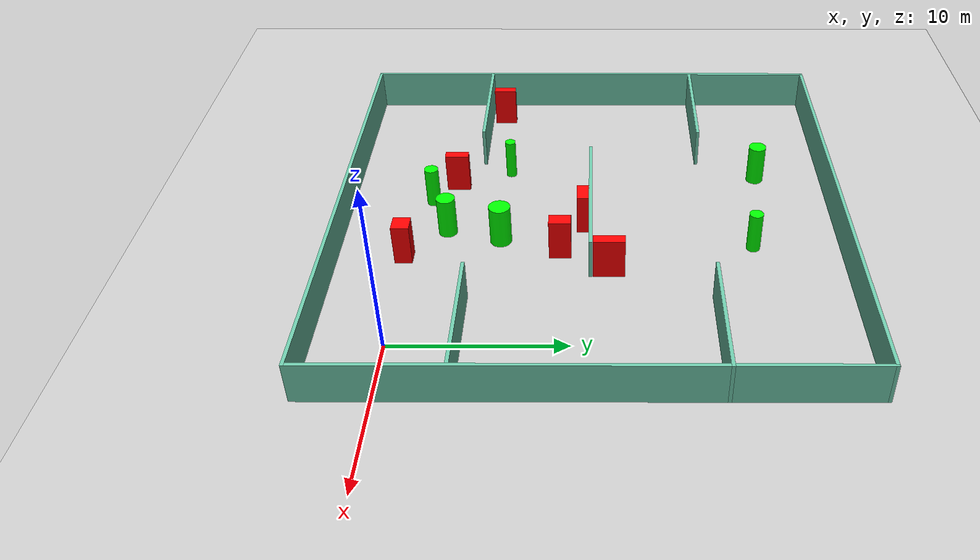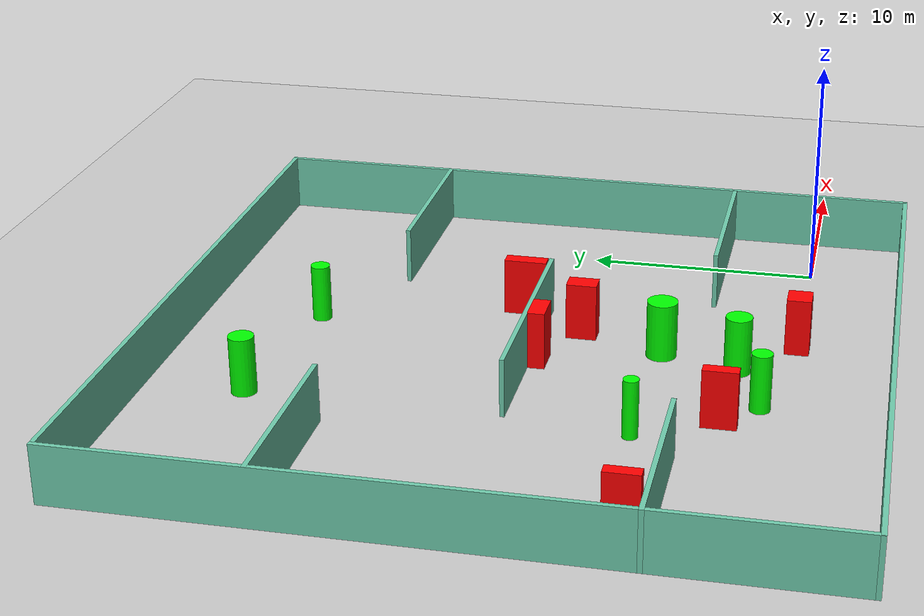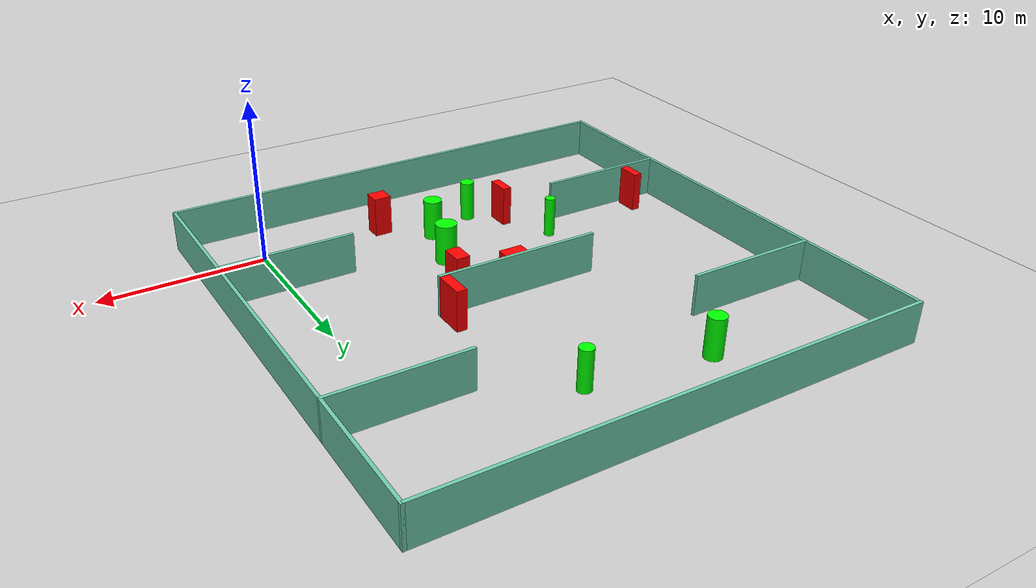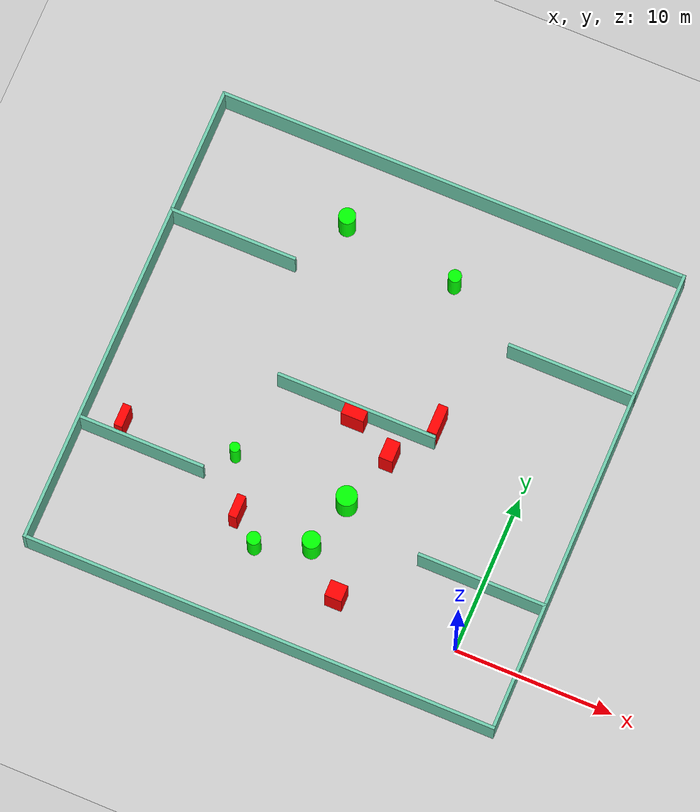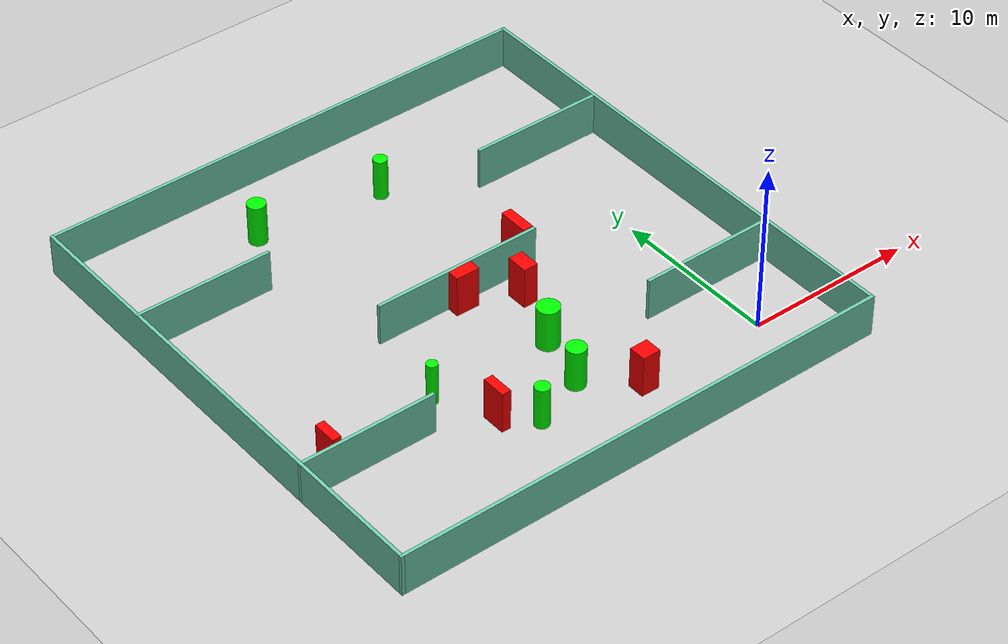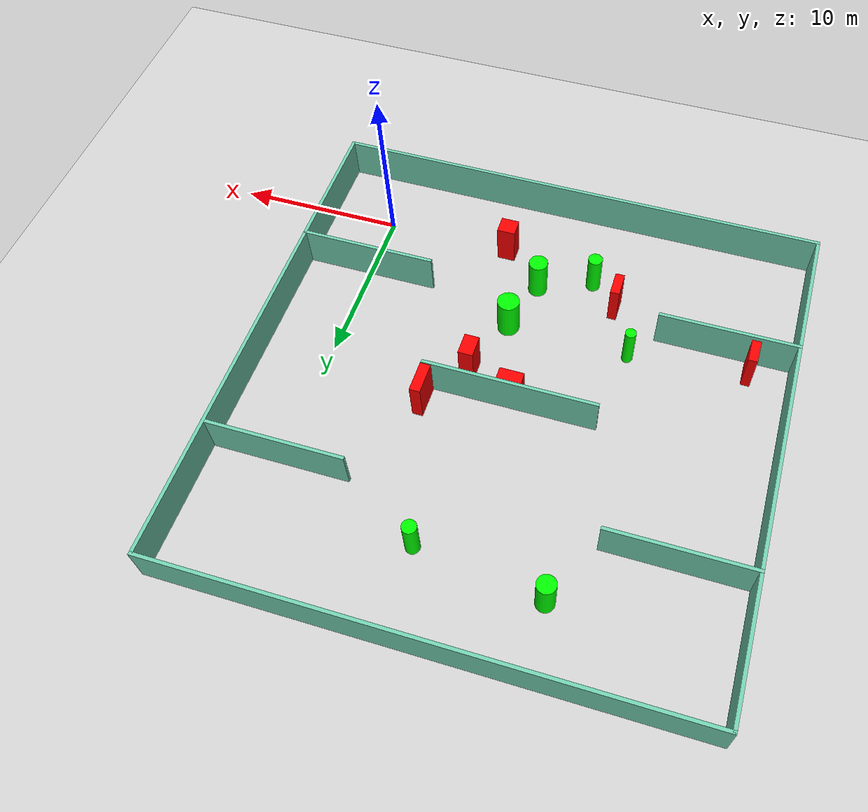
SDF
<sdf version="1.7">
 <world name="default">
  <light name="sun" type="directional">
   <pose>0 0 10 0 -0 0</pose>
   <diffuse>0.8 0.8 0.8 1</diffuse>
   <specular>0.2 0.2 0.2 1</specular>
   <attenuation>
    <range>1000</range>
    <constant>0.9</constant>
    <linear>0.01</linear>
    <quadratic>0.001</quadratic>
   </attenuation>
   <direction>-0.5 0.1 -0.9</direction>
   <spot><inner_angle>0</inner_angle><outer_angle>0</outer_angle><falloff>0</falloff></spot>
  </light>
  <model name="ground_plane">
   <static>1</static>
   <link name="link">
    <collision name="collision">
     <geometry><plane><normal>0 0 1</normal><size>100 100</size></plane></geometry>
     <surface>
      <contact><collide_bitmask>65535</collide_bitmask></contact>
      <friction><ode><mu>100</mu><mu2>50</mu2></ode></friction>
     </surface>
    </collision>
    <visual name="visual">
     <cast_shadows>0</cast_shadows>
     <geometry><plane><normal>0 0 1</normal><size>100 100</size></plane></geometry>
     <material>
      <script><uri>file://media/materials/scripts/gazebo.material</uri><name>Gazebo/Grey</name></script>
     </material>
    </visual>
   </link>
  </model>
  <gravity>0 0 -9.8</gravity>
  <magnetic_field>6e-06 2.3e-05 -4.2e-05</magnetic_field>
  <atmosphere type="adiabatic"/>
  <physics type="ode">
   <max_step_size>0.001</max_step_size>
   <real_time_factor>1</real_time_factor>
   <real_time_update_rate>1000</real_time_update_rate>
  </physics>
  <scene><ambient>0.4 0.4 0.4 1</ambient><background>0.7 0.7 0.7 1</background><shadows>1</shadows></scene>
  <spherical_coordinates>
   <surface_model>EARTH_WGS84</surface_model>
   <latitude_deg>0</latitude_deg>
   <longitude_deg>0</longitude_deg>
   <elevation>0</elevation>
   <heading_deg>0</heading_deg>
  </spherical_coordinates>
  <model name="my_base_walls">
   <link name="Wall_10">
    <collision name="Wall_10_Collision">
     <geometry><box><size>8.2 0.2 2.5</size></box></geometry>
     <pose>0 0 1.25 0 -0 0</pose>
    </collision>
    <visual name="Wall_10_Visual">
     <pose>0 0 1.25 0 -0 0</pose>
     <geometry><box><size>8.2 0.2 2.5</size></box></geometry>
     <material>
      <script><uri>file://media/materials/scripts/gazebo.material</uri><name>Gazebo/Grey</name></script>
      <ambient>0.435294 0.796078 0.67451 1</ambient>
     </material>
     <meta><layer>0</layer></meta>
    </visual>
    <pose>-11 -7 0 0 -0 0</pose>
   </link>
   <link name="Wall_12">
    <collision name="Wall_12_Collision">
     <geometry><box><size>8.2 0.2 2.5</size></box></geometry>
     <pose>0 0 1.25 0 -0 0</pose>
    </collision>
    <visual name="Wall_12_Visual">
     <pose>0 0 1.25 0 -0 0</pose>
     <geometry><box><size>8.2 0.2 2.5</size></box></geometry>
     <material>
      <script><uri>file://media/materials/scripts/gazebo.material</uri><name>Gazebo/Grey</name></script>
      <ambient>0.435294 0.796078 0.67451 1</ambient>
     </material>
     <meta><layer>0</layer></meta>
    </visual>
    <pose>-11 7 0 0 -0 0</pose>
   </link>
   <link name="Wall_14">
    <collision name="Wall_14_Collision">
     <geometry><box><size>8.2 0.2 2.5</size></box></geometry>
     <pose>0 0 1.25 0 -0 0</pose>
    </collision>
    <visual name="Wall_14_Visual">
     <pose>0 0 1.25 0 -0 0</pose>
     <geometry><box><size>8.2 0.2 2.5</size></box></geometry>
     <material>
      <script><uri>file://media/materials/scripts/gazebo.material</uri><name>Gazebo/Grey</name></script>
      <ambient>0.435294 0.796078 0.67451 1</ambient>
     </material>
     <meta><layer>0</layer></meta>
    </visual>
    <pose>11 7 0 0 -0 3.14159</pose>
   </link>
   <link name="Wall_16">
    <collision name="Wall_16_Collision">
     <geometry><box><size>10.2 0.2 2.5</size></box></geometry>
     <pose>0 0 1.25 0 -0 0</pose>
    </collision>
    <visual name="Wall_16_Visual">
     <pose>0 0 1.25 0 -0 0</pose>
     <geometry><box><size>10.2 0.2 2.5</size></box></geometry>
     <material>
      <script><uri>file://media/materials/scripts/gazebo.material</uri><name>Gazebo/Grey</name></script>
      <ambient>0.435294 0.796078 0.67451 1</ambient>
     </material>
     <meta><layer>0</layer></meta>
    </visual>
    <pose>0 0 0 0 -0 3.14159</pose>
   </link>
   <link name="Wall_2">
    <collision name="Wall_2_Collision">
     <geometry><box><size>30.2 0.2 2.5</size></box></geometry>
     <pose>0 0 1.25 0 -0 0</pose>
    </collision>
    <visual name="Wall_2_Visual">
     <pose>0 0 1.25 0 -0 0</pose>
     <geometry><box><size>30.2 0.2 2.5</size></box></geometry>
     <material>
      <script><uri>file://media/materials/scripts/gazebo.material</uri><name>Gazebo/Grey</name></script>
      <ambient>0.435294 0.796078 0.67451 1</ambient>
     </material>
     <meta><layer>0</layer></meta>
    </visual>
    <pose>0 -15 0 0 -0 3.14159</pose>
   </link>
   <link name="Wall_3">
    <collision name="Wall_3_Collision">
     <geometry><box><size>30.2 0.2 2.5</size></box></geometry>
     <pose>0 0 1.25 0 -0 0</pose>
    </collision>
    <visual name="Wall_3_Visual">
     <pose>0 0 1.25 0 -0 0</pose>
     <geometry><box><size>30.2 0.2 2.5</size></box></geometry>
     <material>
      <script><uri>file://media/materials/scripts/gazebo.material</uri><name>Gazebo/Grey</name></script>
      <ambient>0.435294 0.796078 0.67451 1</ambient>
     </material>
     <meta><layer>0</layer></meta>
    </visual>
    <pose>-15 0 0 0 -0 1.5708</pose>
   </link>
   <link name="Wall_4">
    <collision name="Wall_4_Collision">
     <geometry><box><size>30.2 0.2 2.5</size></box></geometry>
     <pose>0 0 1.25 0 -0 0</pose>
    </collision>
    <visual name="Wall_4_Visual">
     <pose>0 0 1.25 0 -0 0</pose>
     <geometry><box><size>30.2 0.2 2.5</size></box></geometry>
     <material>
      <script><uri>file://media/materials/scripts/gazebo.material</uri><name>Gazebo/Grey</name></script>
      <ambient>0.435294 0.796078 0.67451 1</ambient>
     </material>
     <meta><layer>0</layer></meta>
    </visual>
    <pose>0 15 0 0 -0 0</pose>
   </link>
   <link name="Wall_6">
    <collision name="Wall_6_Collision">
     <geometry><box><size>30.2 0.2 2.5</size></box></geometry>
     <pose>0 0 1.25 0 -0 0</pose>
    </collision>
    <visual name="Wall_6_Visual">
     <pose>0 0 1.25 0 -0 0</pose>
     <geometry><box><size>30.2 0.2 2.5</size></box></geometry>
     <material>
      <script><uri>file://media/materials/scripts/gazebo.material</uri><name>Gazebo/Grey</name></script>
      <ambient>0.435294 0.796078 0.67451 1</ambient>
     </material>
     <meta><layer>0</layer></meta>
    </visual>
    <pose>15 0 0 0 -0 1.5708</pose>
   </link>
   <link name="Wall_8">
    <collision name="Wall_8_Collision">
     <geometry><box><size>8.2 0.2 2.5</size></box></geometry>
     <pose>0 0 1.25 0 -0 0</pose>
    </collision>
    <visual name="Wall_8_Visual">
     <pose>0 0 1.25 0 -0 0</pose>
     <geometry><box><size>8.2 0.2 2.5</size></box></geometry>
     <material>
      <script><uri>file://media/materials/scripts/gazebo.material</uri><name>Gazebo/Grey</name></script>
      <ambient>0.435294 0.796078 0.67451 1</ambient>
     </material>
     <meta><layer>0</layer></meta>
    </visual>
    <pose>11 -7 0 0 -0 3.14159</pose>
   </link>
   <static>1</static>
   <pose>-11 11 0 0 -0 0</pose>
  </model>
  <model name="cylinder1">
   <static>1</static>
   <link name="link">
    <inertial>
     <mass>1</mass>
     <inertia><ixx>0.5</ixx><ixy>0</ixy><ixz>0</ixz><iyy>0.5</iyy><iyz>0</iyz><izz>1</izz></inertia>
    </inertial>
    <collision name="collision">
     <geometry><cylinder><radius>0.4130792876384011</radius><length>2.5</length></cylinder></geometry>
    </collision>
    <visual name="visual">
     <geometry><cylinder><radius>0.4130792876384011</radius><length>2.5</length></cylinder></geometry>
     <material>
      <ambient>0 1 0 1</ambient>
      <diffuse>0 1 0 1</diffuse>
      <specular>0.1 0.1 0.1 1</specular>
      <emissive>0 0 0 0</emissive>
     </material>
    </visual>
   </link>
   <pose>-8.677014988710548 20.71084893854012 1.25 0 0 0</pose>
  </model>
  <model name="cylinder2">
   <static>1</static>
   <link name="link">
    <inertial>
     <mass>1</mass>
     <inertia><ixx>0.5</ixx><ixy>0</ixy><ixz>0</ixz><iyy>0.5</iyy><iyz>0</iyz><izz>1</izz></inertia>
    </inertial>
    <collision name="collision">
     <geometry><cylinder><radius>0.6512917296721703</radius><length>2.5</length></cylinder></geometry>
    </collision>
    <visual name="visual">
     <geometry><cylinder><radius>0.6512917296721703</radius><length>2.5</length></cylinder></geometry>
     <material>
      <ambient>0 1 0 1</ambient>
      <diffuse>0 1 0 1</diffuse>
      <specular>0.1 0.1 0.1 1</specular>
      <emissive>0 0 0 0</emissive>
     </material>
    </visual>
   </link>
   <pose>-9.36830123485814 5.6192103987142925 1.25 0 0 0</pose>
  </model>
  <model name="cylinder3">
   <static>1</static>
   <link name="link">
    <inertial>
     <mass>1</mass>
     <inertia><ixx>0.5</ixx><ixy>0</ixy><ixz>0</ixz><iyy>0.5</iyy><iyz>0</iyz><izz>1</izz></inertia>
    </inertial>
    <collision name="collision">
     <geometry><cylinder><radius>0.565362329232163</radius><length>2.5</length></cylinder></geometry>
    </collision>
    <visual name="visual">
     <geometry><cylinder><radius>0.565362329232163</radius><length>2.5</length></cylinder></geometry>
     <material>
      <ambient>0 1 0 1</ambient>
      <diffuse>0 1 0 1</diffuse>
      <specular>0.1 0.1 0.1 1</specular>
      <emissive>0 0 0 0</emissive>
     </material>
    </visual>
   </link>
   <pose>-10.250747821086836 2.334833269135192 1.25 0 0 0</pose>
  </model>
  <model name="cylinder4">
   <static>1</static>
   <link name="link">
    <inertial>
     <mass>1</mass>
     <inertia><ixx>0.5</ixx><ixy>0</ixy><ixz>0</ixz><iyy>0.5</iyy><iyz>0</iyz><izz>1</izz></inertia>
    </inertial>
    <collision name="collision">
     <geometry><cylinder><radius>0.42901579789287725</radius><length>2.5</length></cylinder></geometry>
    </collision>
    <visual name="visual">
     <geometry><cylinder><radius>0.42901579789287725</radius><length>2.5</length></cylinder></geometry>
     <material>
      <ambient>0 1 0 1</ambient>
      <diffuse>0 1 0 1</diffuse>
      <specular>0.1 0.1 0.1 1</specular>
      <emissive>0 0 0 0</emissive>
     </material>
    </visual>
   </link>
   <pose>-13.43891233436499 1.102106863163642 1.25 0 0 0</pose>
  </model>
  <model name="cylinder5">
   <static>1</static>
   <link name="link">
    <inertial>
     <mass>1</mass>
     <inertia><ixx>0.5</ixx><ixy>0</ixy><ixz>0</ixz><iyy>0.5</iyy><iyz>0</iyz><izz>1</izz></inertia>
    </inertial>
    <collision name="collision">
     <geometry><cylinder><radius>0.32505281790502055</radius><length>2.5</length></cylinder></geometry>
    </collision>
    <visual name="visual">
     <geometry><cylinder><radius>0.32505281790502055</radius><length>2.5</length></cylinder></geometry>
     <material>
      <ambient>0 1 0 1</ambient>
      <diffuse>0 1 0 1</diffuse>
      <specular>0.1 0.1 0.1 1</specular>
      <emissive>0 0 0 0</emissive>
     </material>
    </visual>
   </link>
   <pose>-16.66649919122204 5.812756141050366 1.25 0 0 0</pose>
  </model>
  <model name="cylinder6">
   <static>1</static>
   <link name="link">
    <inertial>
     <mass>1</mass>
     <inertia><ixx>0.5</ixx><ixy>0</ixy><ixz>0</ixz><iyy>0.5</iyy><iyz>0</iyz><izz>1</izz></inertia>
    </inertial>
    <collision name="collision">
     <geometry><cylinder><radius>0.5344891007411723</radius><length>2.5</length></cylinder></geometry>
    </collision>
    <visual name="visual">
     <geometry><cylinder><radius>0.5344891007411723</radius><length>2.5</length></cylinder></geometry>
     <material>
      <ambient>0 1 0 1</ambient>
      <diffuse>0 1 0 1</diffuse>
      <specular>0.1 0.1 0.1 1</specular>
      <emissive>0 0 0 0</emissive>
     </material>
    </visual>
   </link>
   <pose>-16.094306173512997 21.685170921455658 1.25 0 0 0</pose>
  </model>
  <model name="box1">
   <static>1</static>
   <link name="link">
    <inertial>
     <mass>1</mass>
     <inertia><ixx>0.083</ixx><ixy>0</ixy><ixz>0</ixz><iyy>0.083</iyy><iyz>0</iyz><izz>0.083</izz></inertia>
    </inertial>
    <collision name="collision">
     <geometry><box><size>1.439323936933198 0.725672887747425 2.5</size></box></geometry>
    </collision>
    <visual name="visual">
     <geometry><box><size>1.439323936933198 0.725672887747425 2.5</size></box></geometry>
     <material>
      <ambient>1 0 0 1</ambient>
      <diffuse>1 0 0 1</diffuse>
      <specular>0.1 0.1 0.1 1</specular>
      <emissive>0 0 0 0</emissive>
     </material>
    </visual>
    <sensor name="my_contact" type="contact">
     <contact><collision>box_collision</collision><topic>__default_topic__</topic></contact>
    </sensor>
   </link>
   <pose>-10.946035624674996 10.551941361428748 1.25 0 0 0</pose>
  </model>
  <model name="box2">
   <static>1</static>
   <link name="link">
    <inertial>
     <mass>1</mass>
     <inertia><ixx>0.083</ixx><ixy>0</ixy><ixz>0</ixz><iyy>0.083</iyy><iyz>0</iyz><izz>0.083</izz></inertia>
    </inertial>
    <collision name="collision">
     <geometry><box><size>0.5303381530222653 1.427856132851886 2.5</size></box></geometry>
    </collision>
    <visual name="visual">
     <geometry><box><size>0.5303381530222653 1.427856132851886 2.5</size></box></geometry>
     <material>
      <ambient>1 0 0 1</ambient>
      <diffuse>1 0 0 1</diffuse>
      <specular>0.1 0.1 0.1 1</specular>
      <emissive>0 0 0 0</emissive>
     </material>
    </visual>
    <sensor name="my_contact" type="contact">
     <contact><collision>box_collision</collision><topic>__default_topic__</topic></contact>
    </sensor>
   </link>
   <pose>-23.597221385067495 5.027448562070308 1.25 0 0 0</pose>
  </model>
  <model name="box3">
   <static>1</static>
   <link name="link">
    <inertial>
     <mass>1</mass>
     <inertia><ixx>0.083</ixx><ixy>0</ixy><ixz>0</ixz><iyy>0.083</iyy><iyz>0</iyz><izz>0.083</izz></inertia>
    </inertial>
    <collision name="collision">
     <geometry><box><size>0.8699451965711142 1.30693083626506 2.5</size></box></geometry>
    </collision>
    <visual name="visual">
     <geometry><box><size>0.8699451965711142 1.30693083626506 2.5</size></box></geometry>
     <material>
      <ambient>1 0 0 1</ambient>
      <diffuse>1 0 0 1</diffuse>
      <specular>0.1 0.1 0.1 1</specular>
      <emissive>0 0 0 0</emissive>
     </material>
    </visual>
    <sensor name="my_contact" type="contact">
     <contact><collision>box_collision</collision><topic>__default_topic__</topic></contact>
    </sensor>
   </link>
   <pose>-8.105285176995988 9.2178963751258 1.25 0 0 0</pose>
  </model>
  <model name="box4">
   <static>1</static>
   <link name="link">
    <inertial>
     <mass>1</mass>
     <inertia><ixx>0.083</ixx><ixy>0</ixy><ixz>0</ixz><iyy>0.083</iyy><iyz>0</iyz><izz>0.083</izz></inertia>
    </inertial>
    <collision name="collision">
     <geometry><box><size>0.6242652268684667 1.8433484646768892 2.5</size></box></geometry>
    </collision>
    <visual name="visual">
     <geometry><box><size>0.6242652268684667 1.8433484646768892 2.5</size></box></geometry>
     <material>
      <ambient>1 0 0 1</ambient>
      <diffuse>1 0 0 1</diffuse>
      <specular>0.1 0.1 0.1 1</specular>
      <emissive>0 0 0 0</emissive>
     </material>
    </visual>
    <sensor name="my_contact" type="contact">
     <contact><collision>box_collision</collision><topic>__default_topic__</topic></contact>
    </sensor>
   </link>
   <pose>-6.210500137921482 12.06843528374 1.25 0 0 0</pose>
  </model>
  <model name="box5">
   <static>1</static>
   <link name="link">
    <inertial>
     <mass>1</mass>
     <inertia><ixx>0.083</ixx><ixy>0</ixy><ixz>0</ixz><iyy>0.083</iyy><iyz>0</iyz><izz>0.083</izz></inertia>
    </inertial>
    <collision name="collision">
     <geometry><box><size>1.0848167358722787 1.037073036022715 2.5</size></box></geometry>
    </collision>
    <visual name="visual">
     <geometry><box><size>1.0848167358722787 1.037073036022715 2.5</size></box></geometry>
     <material>
      <ambient>1 0 0 1</ambient>
      <diffuse>1 0 0 1</diffuse>
      <specular>0.1 0.1 0.1 1</specular>
      <emissive>0 0 0 0</emissive>
     </material>
    </visual>
    <sensor name="my_contact" type="contact">
     <contact><collision>box_collision</collision><topic>__default_topic__</topic></contact>
    </sensor>
   </link>
   <pose>-7.6940657955669565 0.04912943546765014 1.25 0 0 0</pose>
  </model>
  <model name="box6">
   <static>1</static>
   <link name="link">
    <inertial>
     <mass>1</mass>
     <inertia><ixx>0.083</ixx><ixy>0</ixy><ixz>0</ixz><iyy>0.083</iyy><iyz>0</iyz><izz>0.083</izz></inertia>
    </inertial>
    <collision name="collision">
     <geometry><box><size>0.5463865555048917 1.455238186276796 2.5</size></box></geometry>
    </collision>
    <visual name="visual">
     <geometry><box><size>0.5463865555048917 1.455238186276796 2.5</size></box></geometry>
     <material>
      <ambient>1 0 0 1</ambient>
      <diffuse>1 0 0 1</diffuse>
      <specular>0.1 0.1 0.1 1</specular>
      <emissive>0 0 0 0</emissive>
     </material>
    </visual>
    <sensor name="my_contact" type="contact">
     <contact><collision>box_collision</collision><topic>__default_topic__</topic></contact>
    </sensor>
   </link>
   <pose>-15.121595131865426 2.5398135580060472 1.25 0 0 0</pose>
  </model>
 </world>
</sdf>
